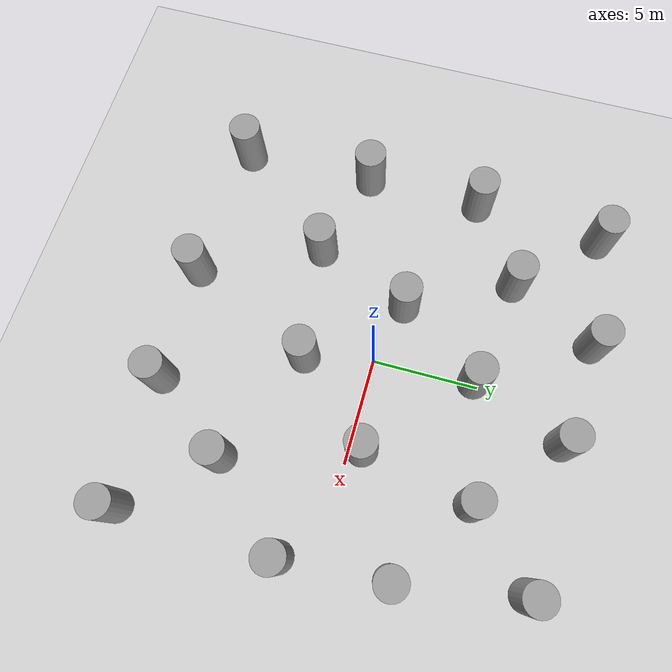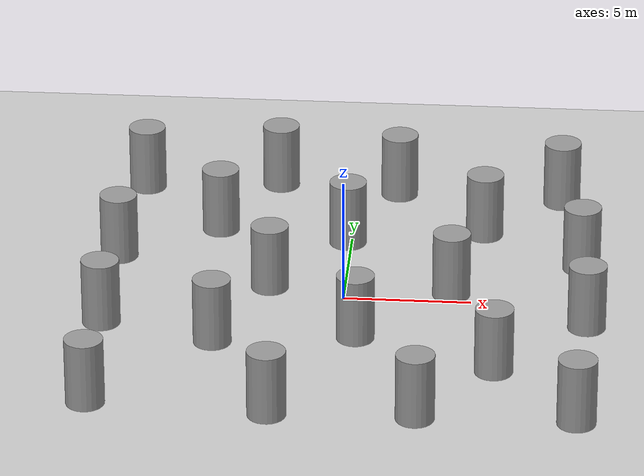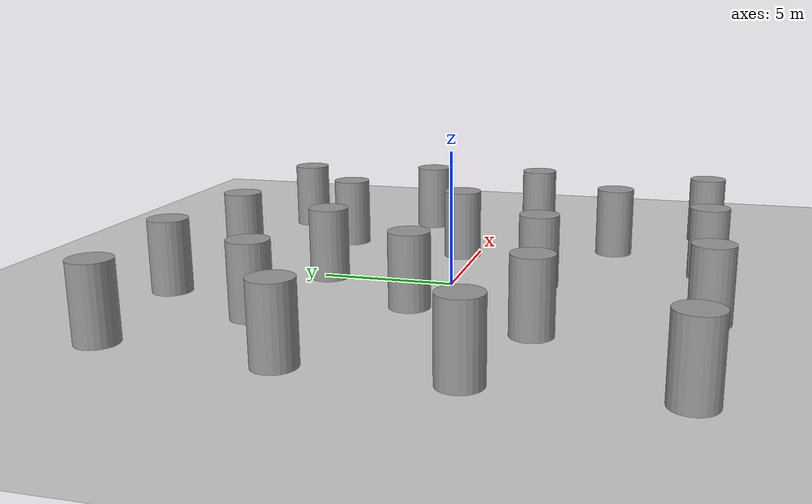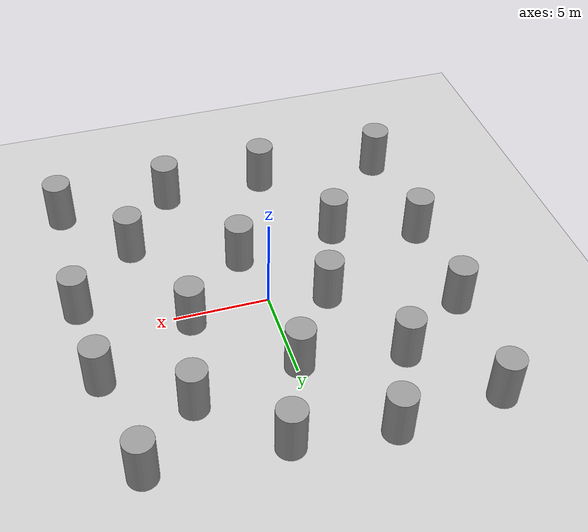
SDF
<sdf version="1.7">
 <world name="default">
  <light name="sun" type="directional">
   <pose>0 0 10 0 -0 0</pose>
   <diffuse>0.8 0.8 0.8 1</diffuse>
   <specular>0.2 0.2 0.2 1</specular>
   <attenuation>
    <range>1000</range>
    <constant>0.9</constant>
    <linear>0.01</linear>
    <quadratic>0.001</quadratic>
   </attenuation>
   <direction>-0.5 0.1 -0.9</direction>
   <spot><inner_angle>0</inner_angle><outer_angle>0</outer_angle><falloff>0</falloff></spot>
  </light>
  <model name="ground_plane">
   <static>1</static>
   <link name="link">
    <collision name="collision">
     <geometry><plane><normal>0 0 1</normal><size>100 100</size></plane></geometry>
     <surface>
      <contact><collide_bitmask>65535</collide_bitmask></contact>
      <friction><ode><mu>100</mu><mu2>50</mu2></ode></friction>
     </surface>
    </collision>
    <visual name="visual">
     <cast_shadows>0</cast_shadows>
     <geometry><plane><normal>0 0 1</normal><size>100 100</size></plane></geometry>
     <material>
      <script><uri>file://media/materials/scripts/gazebo.material</uri><name>Gazebo/Grey</name></script>
     </material>
    </visual>
   </link>
  </model>
  <physics name="default_physics" default="0" type="ode">
   <ode>
    <solver>
     <type>quick</type>
     <iters>10</iters>
     <sor>1.3</sor>
     <use_dynamic_moi_rescaling>0</use_dynamic_moi_rescaling>
    </solver>
    <constraints>
     <cfm>0</cfm>
     <erp>0.2</erp>
     <contact_max_correcting_vel>100</contact_max_correcting_vel>
     <contact_surface_layer>0.001</contact_surface_layer>
    </constraints>
   </ode>
   <max_step_size>0.004</max_step_size>
   <real_time_factor>1</real_time_factor>
   <real_time_update_rate>250</real_time_update_rate>
  </physics>
  <gravity>0 0 -9.8066</gravity>
  <magnetic_field>6e-06 2.3e-05 -4.2e-05</magnetic_field>
  <atmosphere type="adiabatic"/>
  <scene><ambient>0.4 0.4 0.4 1</ambient><background>0.7 0.7 0.7 1</background><shadows>1</shadows></scene>
  <spherical_coordinates>
   <surface_model>EARTH_WGS84</surface_model>
   <latitude_deg>0</latitude_deg>
   <longitude_deg>0</longitude_deg>
   <elevation>0</elevation>
   <heading_deg>0</heading_deg>
  </spherical_coordinates>
  <model name="unit_cylinder">
   <pose>4.20366 0.593724 1.35872 8.5e-05 -3e-06 0.123843</pose>
   <link name="link">
    <inertial>
     <mass>1</mass>
     <inertia><ixx>0.145833</ixx><ixy>0</ixy><ixz>0</ixz><iyy>0.145833</iyy><iyz>0</iyz><izz>0.125</izz></inertia>
    </inertial>
    <collision name="collision">
     <geometry><cylinder><radius>0.744165</radius><length>2.71766</length></cylinder></geometry>
    </collision>
    <visual name="visual">
     <geometry><cylinder><radius>0.744165</radius><length>2.71766</length></cylinder></geometry>
     <material>
      <script><name>Gazebo/Grey</name><uri>file://media/materials/scripts/gazebo.material</uri></script>
     </material>
    </visual>
   </link>
  </model>
  <model name="unit_cylinder_clone">
   <pose>0.685211 -3.16342 1.35872 -5.2e-05 6.8e-05 -2.14327</pose>
   <link name="link">
    <inertial>
     <mass>1</mass>
     <inertia><ixx>0.145833</ixx><ixy>0</ixy><ixz>0</ixz><iyy>0.145833</iyy><iyz>0</iyz><izz>0.125</izz></inertia>
    </inertial>
    <collision name="collision">
     <geometry><cylinder><radius>0.744167</radius><length>2.71766</length></cylinder></geometry>
    </collision>
    <visual name="visual">
     <geometry><cylinder><radius>0.744167</radius><length>2.71766</length></cylinder></geometry>
     <material>
      <script><name>Gazebo/Grey</name><uri>file://media/materials/scripts/gazebo.material</uri></script>
     </material>
    </visual>
   </link>
  </model>
  <model name="unit_cylinder_clone_clone">
   <pose>-2.95088 0.735169 1.35872 -5.2e-05 6.8e-05 -2.14309</pose>
   <link name="link">
    <inertial>
     <mass>1</mass>
     <inertia><ixx>0.145833</ixx><ixy>0</ixy><ixz>0</ixz><iyy>0.145833</iyy><iyz>0</iyz><izz>0.125</izz></inertia>
    </inertial>
    <collision name="collision">
     <geometry><cylinder><radius>0.744167</radius><length>2.71766</length></cylinder></geometry>
    </collision>
    <visual name="visual">
     <geometry><cylinder><radius>0.744167</radius><length>2.71766</length></cylinder></geometry>
     <material>
      <script><name>Gazebo/Grey</name><uri>file://media/materials/scripts/gazebo.material</uri></script>
     </material>
    </visual>
   </link>
  </model>
  <model name="unit_cylinder_clone_clone_0">
   <pose>-0.155487 4.7583 1.35872 -5.2e-05 6.8e-05 -2.14163</pose>
   <link name="link">
    <inertial>
     <mass>1</mass>
     <inertia><ixx>0.145833</ixx><ixy>0</ixy><ixz>0</ixz><iyy>0.145833</iyy><iyz>0</iyz><izz>0.125</izz></inertia>
    </inertial>
    <collision name="collision">
     <geometry><cylinder><radius>0.744167</radius><length>2.71766</length></cylinder></geometry>
    </collision>
    <visual name="visual">
     <geometry><cylinder><radius>0.744167</radius><length>2.71766</length></cylinder></geometry>
     <material>
      <script><name>Gazebo/Grey</name><uri>file://media/materials/scripts/gazebo.material</uri></script>
     </material>
    </visual>
   </link>
  </model>
  <model name="unit_cylinder_clone_clone_1">
   <pose>5.28965 5.80999 1.35872 -5.2e-05 6.8e-05 -2.13469</pose>
   <link name="link">
    <inertial>
     <mass>1</mass>
     <inertia><ixx>0.145833</ixx><ixy>0</ixy><ixz>0</ixz><iyy>0.145833</iyy><iyz>0</iyz><izz>0.125</izz></inertia>
    </inertial>
    <collision name="collision">
     <geometry><cylinder><radius>0.744167</radius><length>2.71766</length></cylinder></geometry>
    </collision>
    <visual name="visual">
     <geometry><cylinder><radius>0.744167</radius><length>2.71766</length></cylinder></geometry>
     <material>
      <script><name>Gazebo/Grey</name><uri>file://media/materials/scripts/gazebo.material</uri></script>
     </material>
    </visual>
   </link>
  </model>
  <model name="unit_cylinder_clone_clone_2">
   <pose>6.11392 -5.453 1.35872 -5.2e-05 6.8e-05 -2.14044</pose>
   <link name="link">
    <inertial>
     <mass>1</mass>
     <inertia><ixx>0.145833</ixx><ixy>0</ixy><ixz>0</ixz><iyy>0.145833</iyy><iyz>0</iyz><izz>0.125</izz></inertia>
    </inertial>
    <collision name="collision">
     <geometry><cylinder><radius>0.744167</radius><length>2.71766</length></cylinder></geometry>
    </collision>
    <visual name="visual">
     <geometry><cylinder><radius>0.744167</radius><length>2.71766</length></cylinder></geometry>
     <material>
      <script><name>Gazebo/Grey</name><uri>file://media/materials/scripts/gazebo.material</uri></script>
     </material>
    </visual>
   </link>
  </model>
  <model name="unit_cylinder_clone_clone_4">
   <pose>-5.34715 5.54221 1.35872 -5.2e-05 6.8e-05 -2.13837</pose>
   <link name="link">
    <inertial>
     <mass>1</mass>
     <inertia><ixx>0.145833</ixx><ixy>0</ixy><ixz>0</ixz><iyy>0.145833</iyy><iyz>0</iyz><izz>0.125</izz></inertia>
    </inertial>
    <collision name="collision">
     <geometry><cylinder><radius>0.744167</radius><length>2.71766</length></cylinder></geometry>
    </collision>
    <visual name="visual">
     <geometry><cylinder><radius>0.744167</radius><length>2.71766</length></cylinder></geometry>
     <material>
      <script><name>Gazebo/Grey</name><uri>file://media/materials/scripts/gazebo.material</uri></script>
     </material>
    </visual>
   </link>
  </model>
  <model name="unit_cylinder_clone_clone_5">
   <pose>-9.23036 -2.61059 1.35872 -5.3e-05 6.7e-05 -2.14646</pose>
   <link name="link">
    <inertial>
     <mass>1</mass>
     <inertia><ixx>0.145833</ixx><ixy>0</ixy><ixz>0</ixz><iyy>0.145833</iyy><iyz>0</iyz><izz>0.125</izz></inertia>
    </inertial>
    <collision name="collision">
     <geometry><cylinder><radius>0.744167</radius><length>2.71766</length></cylinder></geometry>
    </collision>
    <visual name="visual">
     <geometry><cylinder><radius>0.744167</radius><length>2.71766</length></cylinder></geometry>
     <material>
      <script><name>Gazebo/Grey</name><uri>file://media/materials/scripts/gazebo.material</uri></script>
     </material>
    </visual>
   </link>
  </model>
  <model name="unit_cylinder_clone_clone_6">
   <pose>-9.06888 -8.9158 1.35872 -5.2e-05 6.8e-05 -2.14236</pose>
   <link name="link">
    <inertial>
     <mass>1</mass>
     <inertia><ixx>0.145833</ixx><ixy>0</ixy><ixz>0</ixz><iyy>0.145833</iyy><iyz>0</iyz><izz>0.125</izz></inertia>
    </inertial>
    <collision name="collision">
     <geometry><cylinder><radius>0.744167</radius><length>2.71766</length></cylinder></geometry>
    </collision>
    <visual name="visual">
     <geometry><cylinder><radius>0.744167</radius><length>2.71766</length></cylinder></geometry>
     <material>
      <script><name>Gazebo/Grey</name><uri>file://media/materials/scripts/gazebo.material</uri></script>
     </material>
    </visual>
   </link>
  </model>
  <model name="unit_cylinder_clone_clone_7">
   <pose>-4.78435 -3.85698 1.35872 -5.2e-05 6.8e-05 -2.14114</pose>
   <link name="link">
    <inertial>
     <mass>1</mass>
     <inertia><ixx>0.145833</ixx><ixy>0</ixy><ixz>0</ixz><iyy>0.145833</iyy><iyz>0</iyz><izz>0.125</izz></inertia>
    </inertial>
    <collision name="collision">
     <geometry><cylinder><radius>0.744167</radius><length>2.71766</length></cylinder></geometry>
    </collision>
    <visual name="visual">
     <geometry><cylinder><radius>0.744167</radius><length>2.71766</length></cylinder></geometry>
     <material>
      <script><name>Gazebo/Grey</name><uri>file://media/materials/scripts/gazebo.material</uri></script>
     </material>
    </visual>
   </link>
  </model>
  <model name="unit_cylinder_clone_clone_9">
   <pose>9.34658 -9.15774 1.35872 -5.2e-05 6.8e-05 -2.13909</pose>
   <link name="link">
    <inertial>
     <mass>1</mass>
     <inertia><ixx>0.145833</ixx><ixy>0</ixy><ixz>0</ixz><iyy>0.145833</iyy><iyz>0</iyz><izz>0.125</izz></inertia>
    </inertial>
    <collision name="collision">
     <geometry><cylinder><radius>0.744167</radius><length>2.71766</length></cylinder></geometry>
    </collision>
    <visual name="visual">
     <geometry><cylinder><radius>0.744167</radius><length>2.71766</length></cylinder></geometry>
     <material>
      <script><name>Gazebo/Grey</name><uri>file://media/materials/scripts/gazebo.material</uri></script>
     </material>
    </visual>
   </link>
  </model>
  <model name="unit_cylinder_clone_clone_11">
   <pose>9.25211 3.19742 1.35872 -5.2e-05 6.8e-05 -2.13778</pose>
   <link name="link">
    <inertial>
     <mass>1</mass>
     <inertia><ixx>0.145833</ixx><ixy>0</ixy><ixz>0</ixz><iyy>0.145833</iyy><iyz>0</iyz><izz>0.125</izz></inertia>
    </inertial>
    <collision name="collision">
     <geometry><cylinder><radius>0.744167</radius><length>2.71766</length></cylinder></geometry>
    </collision>
    <visual name="visual">
     <geometry><cylinder><radius>0.744167</radius><length>2.71766</length></cylinder></geometry>
     <material>
      <script><name>Gazebo/Grey</name><uri>file://media/materials/scripts/gazebo.material</uri></script>
     </material>
    </visual>
   </link>
  </model>
  <model name="unit_cylinder_clone_clone_13">
   <pose>-8.71978 9.15038 1.35872 -5.2e-05 6.8e-05 -2.13999</pose>
   <link name="link">
    <inertial>
     <mass>1</mass>
     <inertia><ixx>0.145833</ixx><ixy>0</ixy><ixz>0</ixz><iyy>0.145833</iyy><iyz>0</iyz><izz>0.125</izz></inertia>
    </inertial>
    <collision name="collision">
     <geometry><cylinder><radius>0.744167</radius><length>2.71766</length></cylinder></geometry>
    </collision>
    <visual name="visual">
     <geometry><cylinder><radius>0.744167</radius><length>2.71766</length></cylinder></geometry>
     <material>
      <script><name>Gazebo/Grey</name><uri>file://media/materials/scripts/gazebo.material</uri></script>
     </material>
    </visual>
   </link>
  </model>
  <model name="unit_cylinder_clone_clone_14">
   <pose>8.31927 8.8915 1.35872 -5.2e-05 6.8e-05 -2.13802</pose>
   <link name="link">
    <inertial>
     <mass>1</mass>
     <inertia><ixx>0.145833</ixx><ixy>0</ixy><ixz>0</ixz><iyy>0.145833</iyy><iyz>0</iyz><izz>0.125</izz></inertia>
    </inertial>
    <collision name="collision">
     <geometry><cylinder><radius>0.744167</radius><length>2.71766</length></cylinder></geometry>
    </collision>
    <visual name="visual">
     <geometry><cylinder><radius>0.744167</radius><length>2.71766</length></cylinder></geometry>
     <material>
      <script><name>Gazebo/Grey</name><uri>file://media/materials/scripts/gazebo.material</uri></script>
     </material>
    </visual>
   </link>
  </model>
  <model name="unit_cylinder_clone_0">
   <pose>1.66124 9.17693 1.35872 8.5e-05 -3e-06 0.12387</pose>
   <link name="link">
    <inertial>
     <mass>1</mass>
     <inertia><ixx>0.145833</ixx><ixy>0</ixy><ixz>0</ixz><iyy>0.145833</iyy><iyz>0</iyz><izz>0.125</izz></inertia>
    </inertial>
    <collision name="collision">
     <geometry><cylinder><radius>0.744165</radius><length>2.71766</length></cylinder></geometry>
    </collision>
    <visual name="visual">
     <geometry><cylinder><radius>0.744165</radius><length>2.71766</length></cylinder></geometry>
     <material>
      <script><name>Gazebo/Grey</name><uri>file://media/materials/scripts/gazebo.material</uri></script>
     </material>
    </visual>
   </link>
  </model>
  <model name="unit_cylinder_clone_1">
   <pose>9.56216 -1.71349 1.35872 8.5e-05 -3e-06 0.12356</pose>
   <link name="link">
    <inertial>
     <mass>1</mass>
     <inertia><ixx>0.145833</ixx><ixy>0</ixy><ixz>0</ixz><iyy>0.145833</iyy><iyz>0</iyz><izz>0.125</izz></inertia>
    </inertial>
    <collision name="collision">
     <geometry><cylinder><radius>0.744165</radius><length>2.71766</length></cylinder></geometry>
    </collision>
    <visual name="visual">
     <geometry><cylinder><radius>0.744165</radius><length>2.71766</length></cylinder></geometry>
     <material>
      <script><name>Gazebo/Grey</name><uri>file://media/materials/scripts/gazebo.material</uri></script>
     </material>
    </visual>
   </link>
  </model>
  <model name="unit_cylinder_clone_2">
   <pose>-9.17984 2.97047 1.35872 8.5e-05 -3e-06 0.123549</pose>
   <link name="link">
    <inertial>
     <mass>1</mass>
     <inertia><ixx>0.145833</ixx><ixy>0</ixy><ixz>0</ixz><iyy>0.145833</iyy><iyz>0</iyz><izz>0.125</izz></inertia>
    </inertial>
    <collision name="collision">
     <geometry><cylinder><radius>0.744165</radius><length>2.71766</length></cylinder></geometry>
    </collision>
    <visual name="visual">
     <geometry><cylinder><radius>0.744165</radius><length>2.71766</length></cylinder></geometry>
     <material>
      <script><name>Gazebo/Grey</name><uri>file://media/materials/scripts/gazebo.material</uri></script>
     </material>
    </visual>
   </link>
  </model>
  <model name="unit_cylinder_clone_3">
   <pose>-2.2054 -9.33691 1.35872 8.5e-05 -3e-06 0.123458</pose>
   <link name="link">
    <inertial>
     <mass>1</mass>
     <inertia><ixx>0.145833</ixx><ixy>0</ixy><ixz>0</ixz><iyy>0.145833</iyy><iyz>0</iyz><izz>0.125</izz></inertia>
    </inertial>
    <collision name="collision">
     <geometry><cylinder><radius>0.744165</radius><length>2.71766</length></cylinder></geometry>
    </collision>
    <visual name="visual">
     <geometry><cylinder><radius>0.744165</radius><length>2.71766</length></cylinder></geometry>
     <material>
      <script><name>Gazebo/Grey</name><uri>file://media/materials/scripts/gazebo.material</uri></script>
     </material>
    </visual>
   </link>
  </model>
  <model name="unit_cylinder_clone_4">
   <pose>3.3334 -9.23715 1.35872 8.5e-05 -3e-06 0.12352</pose>
   <link name="link">
    <inertial>
     <mass>1</mass>
     <inertia><ixx>0.145833</ixx><ixy>0</ixy><ixz>0</ixz><iyy>0.145833</iyy><iyz>0</iyz><izz>0.125</izz></inertia>
    </inertial>
    <collision name="collision">
     <geometry><cylinder><radius>0.744165</radius><length>2.71766</length></cylinder></geometry>
    </collision>
    <visual name="visual">
     <geometry><cylinder><radius>0.744165</radius><length>2.71766</length></cylinder></geometry>
     <material>
      <script><name>Gazebo/Grey</name><uri>file://media/materials/scripts/gazebo.material</uri></script>
     </material>
    </visual>
   </link>
  </model>
  <model name="unit_cylinder_clone_5">
   <pose>-3.24939 9.70194 1.35872 8.5e-05 -3e-06 0.123666</pose>
   <link name="link">
    <inertial>
     <mass>1</mass>
     <inertia><ixx>0.145833</ixx><ixy>0</ixy><ixz>0</ixz><iyy>0.145833</iyy><iyz>0</iyz><izz>0.125</izz></inertia>
    </inertial>
    <collision name="collision">
     <geometry><cylinder><radius>0.744165</radius><length>2.71766</length></cylinder></geometry>
    </collision>
    <visual name="visual">
     <geometry><cylinder><radius>0.744165</radius><length>2.71766</length></cylinder></geometry>
     <material>
      <script><name>Gazebo/Grey</name><uri>file://media/materials/scripts/gazebo.material</uri></script>
     </material>
    </visual>
   </link>
  </model>
 </world>
</sdf>
